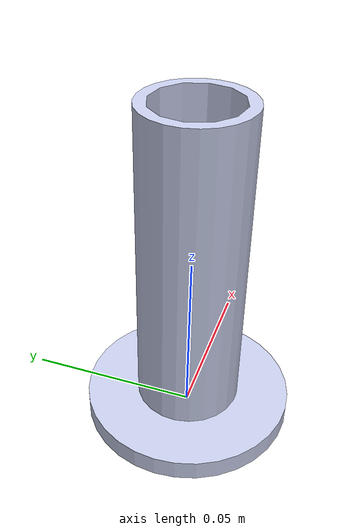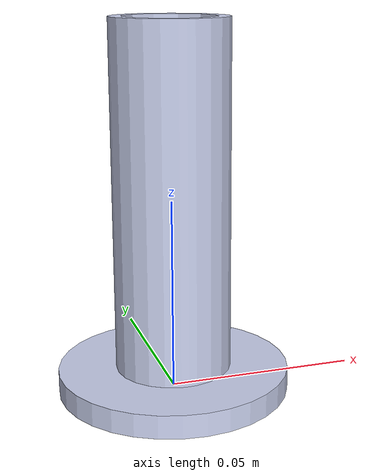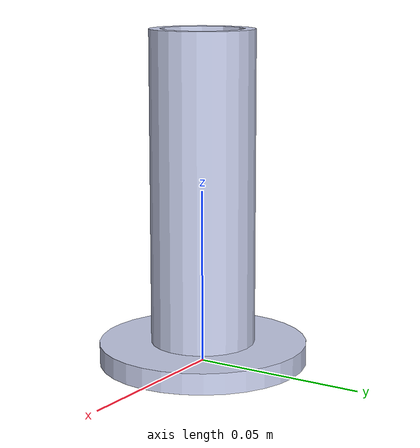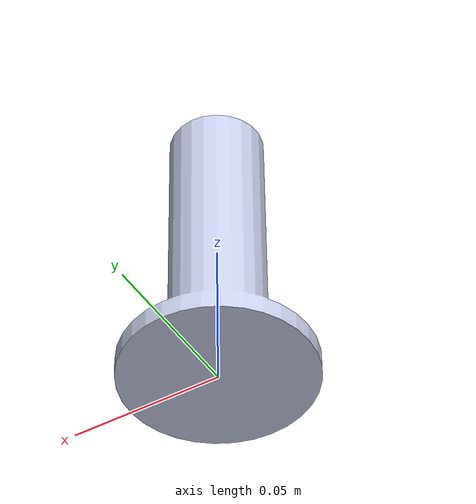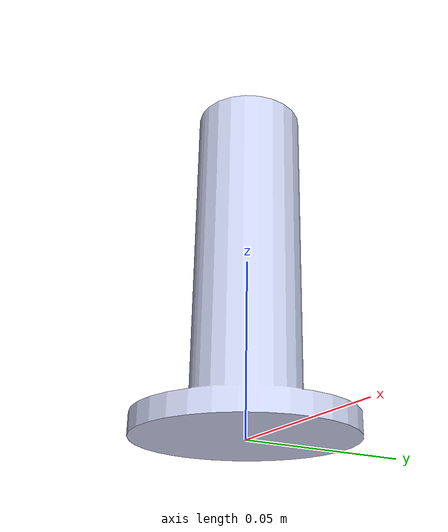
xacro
<?xml version="1.0" encoding="utf-8"?>
<robot name="taotong" xmlns:xacro="http://www.ros.org/wiki/xacro">
<xacro:property name="nameofManipulator" value = "taotong"/>

<!--link 8-->

 <!--link 1-->

  <link name="${nameofManipulator}_link8">
    <inertial>
      <origin        xyz="0 0 0"        rpy="0 0 0" />
      <mass        value="0.0015445" />
      <inertia        ixx="1.8927E-07"        ixy="-5.5536E-25"        ixz="-5.6967E-24"        iyy="1.8927E-07"        iyz="1.81890651016342E-23"        izz="4.9863E-08" />
    </inertial>

    <visual>
      <origin        xyz="0 0 0"        rpy="1.57 0 0" />
      <geometry>
        <mesh                  filename="package://rokae_desk/meshes/taotong_hed.stl"    scale="3 3 3"/>
      </geometry>
      <material        name="">
        <color          rgba="0.79216 0.81961 0.93333 1" />
      </material>
    </visual>

    <collision>
      <origin        xyz="0 0 0"        rpy="1.57 0 0" />
      <geometry>
        <mesh          filename="package://rokae_desk/meshes/taotong_hed.stl"    scale="3 3 3"/>
      </geometry>
    </collision>

  </link>

<!-- taotong_link8 -->

 <gazebo reference="${nameofManipulator}_link8">
     <material>Gazebo/Gray</material>
  </gazebo>

<!-- ros_control plugin -->
<gazebo>
  <plugin name="gazebo_ros_control" filename="libgazebo_ros_control.so">
    <robotNamespace>/taotong</robotNamespace>
    <robotSimType>gazebo_ros_control/DefaultRobotHWSim</robotSimType>
    <legacyModeNS>true</legacyModeNS>
  </plugin>
</gazebo>

</robot>
